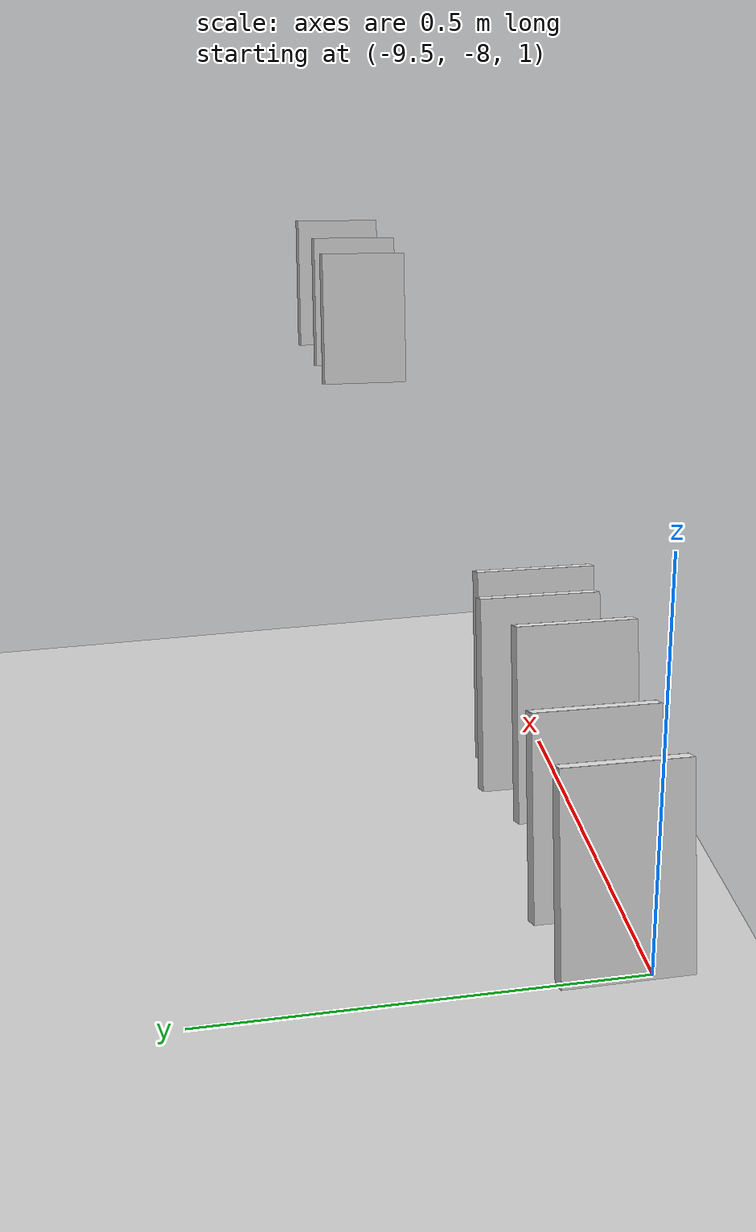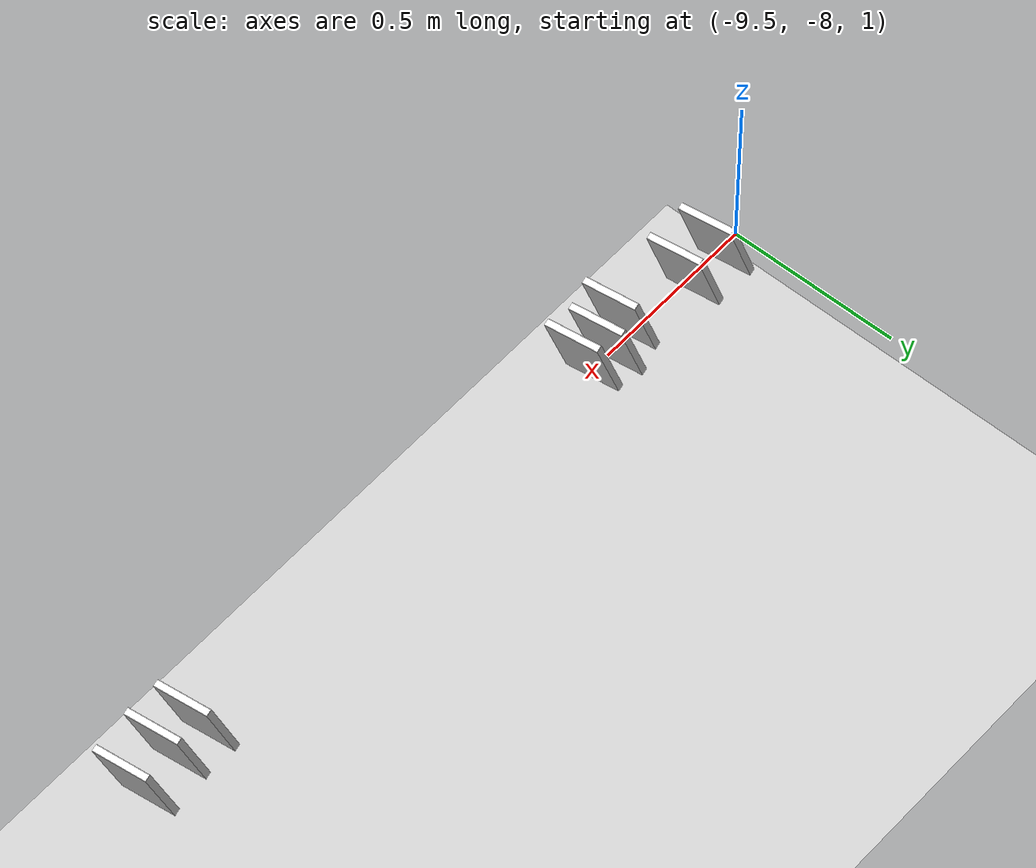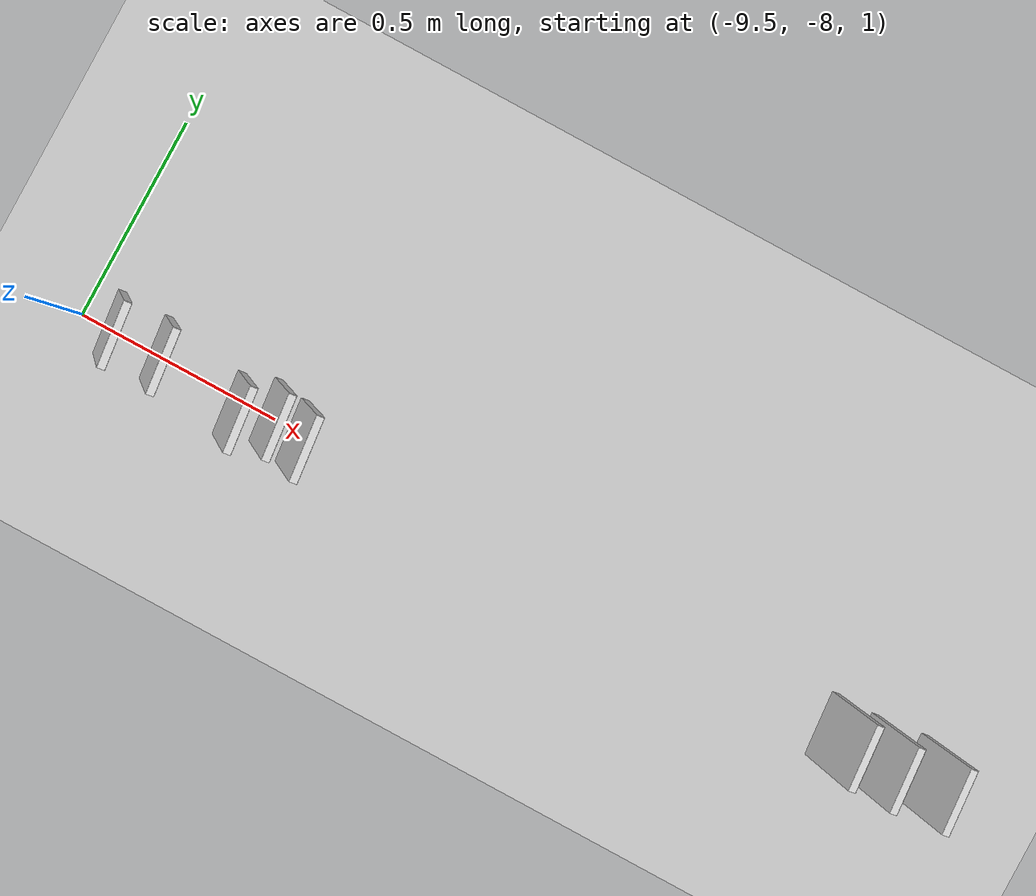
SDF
<sdf version="1.7">
 <world name="simulate_indoor">
  <model name="ground_plane">
   <static>1</static>
   <link name="link">
    <collision name="collision">
     <geometry><plane><normal>0 0 1</normal><size>100 100</size></plane></geometry>
     <surface>
      <contact><collide_bitmask>65535</collide_bitmask></contact>
      <friction><ode><mu>100</mu><mu2>50</mu2></ode></friction>
     </surface>
    </collision>
    <visual name="visual">
     <cast_shadows>0</cast_shadows>
     <geometry><plane><normal>0 0 1</normal><size>100 100</size></plane></geometry>
     <material>
      <script><uri>file://media/materials/scripts/gazebo.material</uri><name>Gazebo/Grey</name></script>
     </material>
    </visual>
   </link>
  </model>
  <model name="book_5_clone_0">
   <link name="cover">
    <pose>0 -0.000108 0.01 0 -0 0</pose>
    <visual name="visual">
     <geometry><box><size>0.245 0.16 0.02</size></box></geometry>
     <material>
      <script>
       <uri>model://book_5/materials/scripts</uri>
       <uri>model://book_5/materials/textures</uri>
       <name>book_5</name>
      </script>
     </material>
    </visual>
    <collision name="collision"><geometry><box><size>0.245 0.16 0.02</size></box></geometry></collision>
   </link>
   <link name="page">
    <pose>0 0.000608 0.01 0 -0 0</pose>
    <visual name="visual">
     <geometry><box><size>0.24502 0.15862 0.018</size></box></geometry>
     <material>
      <lighting>1</lighting>
      <ambient>1 1 1 1</ambient>
      <diffuse>1 1 1 1</diffuse>
      <specular>0.01 0.01 0.01 1</specular>
      <emissive>0 0 0 1</emissive>
      <shader type="vertex"><normal_map>__default__</normal_map></shader>
     </material>
    </visual>
    <collision name="collision"><geometry><box><size>0.245 0.16 0.018</size></box></geometry></collision>
   </link>
   <static>1</static>
   <pose>-9.27849 -7.9915 1.07095 -0.235266 1.25811 3.01095</pose>
  </model>
  <model name="book_5_clone_1">
   <link name="cover">
    <pose>0 -0.000108 0.01 0 -0 0</pose>
    <visual name="visual">
     <geometry><box><size>0.245 0.16 0.02</size></box></geometry>
     <material>
      <script>
       <uri>model://book_5/materials/scripts</uri>
       <uri>model://book_5/materials/textures</uri>
       <name>book_5</name>
      </script>
     </material>
    </visual>
    <collision name="collision"><geometry><box><size>0.245 0.16 0.02</size></box></geometry></collision>
   </link>
   <link name="page">
    <pose>0 0.000608 0.01 0 -0 0</pose>
    <visual name="visual">
     <geometry><box><size>0.24502 0.15862 0.018</size></box></geometry>
     <material>
      <lighting>1</lighting>
      <ambient>1 1 1 1</ambient>
      <diffuse>1 1 1 1</diffuse>
      <specular>0.01 0.01 0.01 1</specular>
      <emissive>0 0 0 1</emissive>
      <shader type="vertex"><normal_map>__default__</normal_map></shader>
     </material>
    </visual>
    <collision name="collision"><geometry><box><size>0.245 0.16 0.018</size></box></geometry></collision>
   </link>
   <static>1</static>
   <pose>-9.06874 -8.024 1.07095 -0.235266 1.25811 3.01095</pose>
  </model>
  <model name="book_5_clone_2">
   <link name="cover">
    <pose>0 -0.000108 0.01 0 -0 0</pose>
    <visual name="visual">
     <geometry><box><size>0.245 0.16 0.02</size></box></geometry>
     <material>
      <script>
       <uri>model://book_5/materials/scripts</uri>
       <uri>model://book_5/materials/textures</uri>
       <name>book_5</name>
      </script>
     </material>
    </visual>
    <collision name="collision"><geometry><box><size>0.245 0.16 0.02</size></box></geometry></collision>
   </link>
   <link name="page">
    <pose>0 0.000608 0.01 0 -0 0</pose>
    <visual name="visual">
     <geometry><box><size>0.24502 0.15862 0.018</size></box></geometry>
     <material>
      <lighting>1</lighting>
      <ambient>1 1 1 1</ambient>
      <diffuse>1 1 1 1</diffuse>
      <specular>0.01 0.01 0.01 1</specular>
      <emissive>0 0 0 1</emissive>
      <shader type="vertex"><normal_map>__default__</normal_map></shader>
     </material>
    </visual>
    <collision name="collision"><geometry><box><size>0.245 0.16 0.018</size></box></geometry></collision>
   </link>
   <static>1</static>
   <pose>-8.98656 -7.9976 1.07095 -0.235266 1.25811 3.01095</pose>
  </model>
  <model name="book_5_clone_3">
   <link name="cover">
    <pose>0 -0.000108 0.01 0 -0 0</pose>
    <visual name="visual">
     <geometry><box><size>0.245 0.16 0.02</size></box></geometry>
     <material>
      <script>
       <uri>model://book_5/materials/scripts</uri>
       <uri>model://book_5/materials/textures</uri>
       <name>book_5</name>
      </script>
     </material>
    </visual>
    <collision name="collision"><geometry><box><size>0.245 0.16 0.02</size></box></geometry></collision>
   </link>
   <link name="page">
    <pose>0 0.000608 0.01 0 -0 0</pose>
    <visual name="visual">
     <geometry><box><size>0.24502 0.15862 0.018</size></box></geometry>
     <material>
      <lighting>1</lighting>
      <ambient>1 1 1 1</ambient>
      <diffuse>1 1 1 1</diffuse>
      <specular>0.01 0.01 0.01 1</specular>
      <emissive>0 0 0 1</emissive>
      <shader type="vertex"><normal_map>__default__</normal_map></shader>
     </material>
    </visual>
    <collision name="collision"><geometry><box><size>0.245 0.16 0.018</size></box></geometry></collision>
   </link>
   <static>1</static>
   <pose>-8.91045 -8.01065 1.07095 -0.235266 1.25811 3.01095</pose>
  </model>
  <model name="book_5_clone_4">
   <link name="cover">
    <pose>0 -0.000108 0.01 0 -0 0</pose>
    <visual name="visual">
     <geometry><box><size>0.245 0.16 0.02</size></box></geometry>
     <material>
      <script>
       <uri>model://book_5/materials/scripts</uri>
       <uri>model://book_5/materials/textures</uri>
       <name>book_5</name>
      </script>
     </material>
    </visual>
    <collision name="collision"><geometry><box><size>0.245 0.16 0.02</size></box></geometry></collision>
   </link>
   <link name="page">
    <pose>0 0.000608 0.01 0 -0 0</pose>
    <visual name="visual">
     <geometry><box><size>0.24502 0.15862 0.018</size></box></geometry>
     <material>
      <lighting>1</lighting>
      <ambient>1 1 1 1</ambient>
      <diffuse>1 1 1 1</diffuse>
      <specular>0.01 0.01 0.01 1</specular>
      <emissive>0 0 0 1</emissive>
      <shader type="vertex"><normal_map>__default__</normal_map></shader>
     </material>
    </visual>
    <collision name="collision"><geometry><box><size>0.245 0.16 0.018</size></box></geometry></collision>
   </link>
   <static>1</static>
   <pose>-9.40065 -7.99163 1.07095 -0.235266 1.25811 3.01095</pose>
  </model>
  <model name="book_5_clone_5">
   <link name="cover">
    <pose>0 -0.000108 0.01 0 -0 0</pose>
    <visual name="visual">
     <geometry><box><size>0.245 0.16 0.02</size></box></geometry>
     <material>
      <script>
       <uri>model://book_5/materials/scripts</uri>
       <uri>model://book_5/materials/textures</uri>
       <name>book_5</name>
      </script>
     </material>
    </visual>
    <collision name="collision"><geometry><box><size>0.245 0.16 0.02</size></box></geometry></collision>
   </link>
   <link name="page">
    <pose>0 0.000608 0.01 0 -0 0</pose>
    <visual name="visual">
     <geometry><box><size>0.24502 0.15862 0.018</size></box></geometry>
     <material>
      <lighting>1</lighting>
      <ambient>1 1 1 1</ambient>
      <diffuse>1 1 1 1</diffuse>
      <specular>0.01 0.01 0.01 1</specular>
      <emissive>0 0 0 1</emissive>
      <shader type="vertex"><normal_map>__default__</normal_map></shader>
     </material>
    </visual>
    <collision name="collision"><geometry><box><size>0.245 0.16 0.018</size></box></geometry></collision>
   </link>
   <static>1</static>
   <pose>-7.50919 -8.02157 1.07095 -0.235266 1.25811 3.01095</pose>
  </model>
  <model name="book_5_clone_6">
   <link name="cover">
    <pose>0 -0.000108 0.01 0 -0 0</pose>
    <visual name="visual">
     <geometry><box><size>0.245 0.16 0.02</size></box></geometry>
     <material>
      <script>
       <uri>model://book_5/materials/scripts</uri>
       <uri>model://book_5/materials/textures</uri>
       <name>book_5</name>
      </script>
     </material>
    </visual>
    <collision name="collision"><geometry><box><size>0.245 0.16 0.02</size></box></geometry></collision>
   </link>
   <link name="page">
    <pose>0 0.000608 0.01 0 -0 0</pose>
    <visual name="visual">
     <geometry><box><size>0.24502 0.15862 0.018</size></box></geometry>
     <material>
      <lighting>1</lighting>
      <ambient>1 1 1 1</ambient>
      <diffuse>1 1 1 1</diffuse>
      <specular>0.01 0.01 0.01 1</specular>
      <emissive>0 0 0 1</emissive>
      <shader type="vertex"><normal_map>__default__</normal_map></shader>
     </material>
    </visual>
    <collision name="collision"><geometry><box><size>0.245 0.16 0.018</size></box></geometry></collision>
   </link>
   <static>1</static>
   <pose>-7.40613 -8.02134 1.07095 -0.235266 1.25811 3.01095</pose>
  </model>
  <model name="book_5_clone_7">
   <link name="cover">
    <pose>0 -0.000108 0.01 0 -0 0</pose>
    <visual name="visual">
     <geometry><box><size>0.245 0.16 0.02</size></box></geometry>
     <material>
      <script>
       <uri>model://book_5/materials/scripts</uri>
       <uri>model://book_5/materials/textures</uri>
       <name>book_5</name>
      </script>
     </material>
    </visual>
    <collision name="collision"><geometry><box><size>0.245 0.16 0.02</size></box></geometry></collision>
   </link>
   <link name="page">
    <pose>0 0.000608 0.01 0 -0 0</pose>
    <visual name="visual">
     <geometry><box><size>0.24502 0.15862 0.018</size></box></geometry>
     <material>
      <lighting>1</lighting>
      <ambient>1 1 1 1</ambient>
      <diffuse>1 1 1 1</diffuse>
      <specular>0.01 0.01 0.01 1</specular>
      <emissive>0 0 0 1</emissive>
      <shader type="vertex"><normal_map>__default__</normal_map></shader>
     </material>
    </visual>
    <collision name="collision"><geometry><box><size>0.245 0.16 0.018</size></box></geometry></collision>
   </link>
   <static>1</static>
   <pose>-7.28297 -8.0081 1.07095 -0.235266 1.25811 3.01095</pose>
  </model>
 </world>
</sdf>
